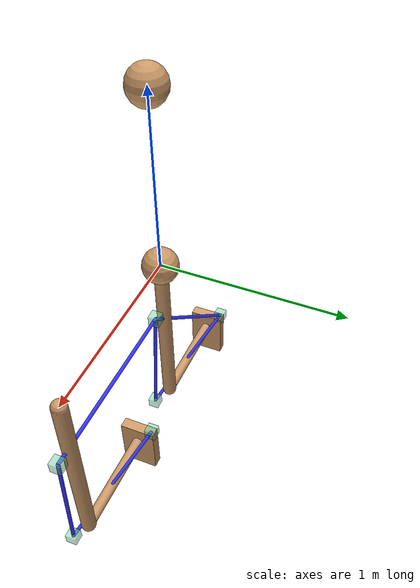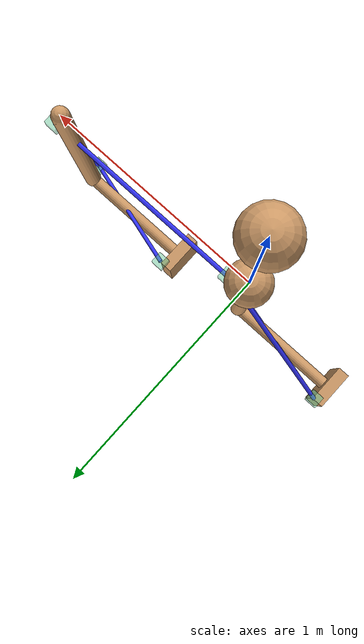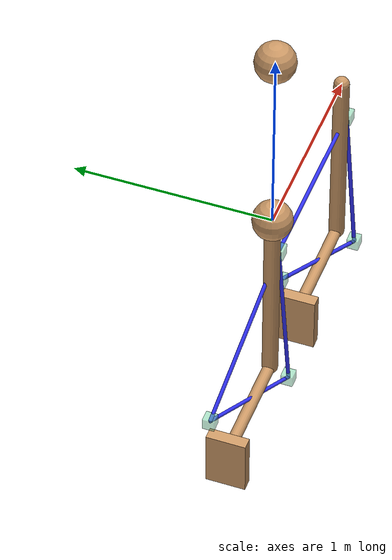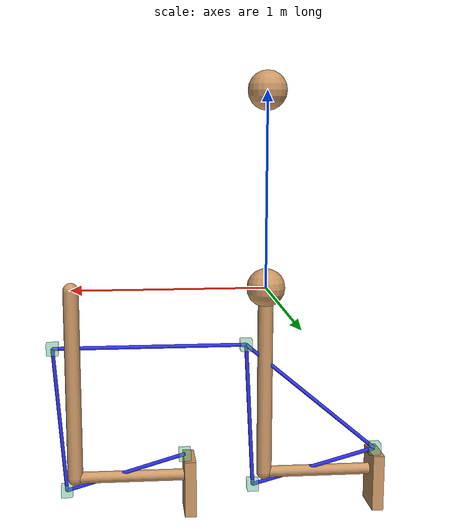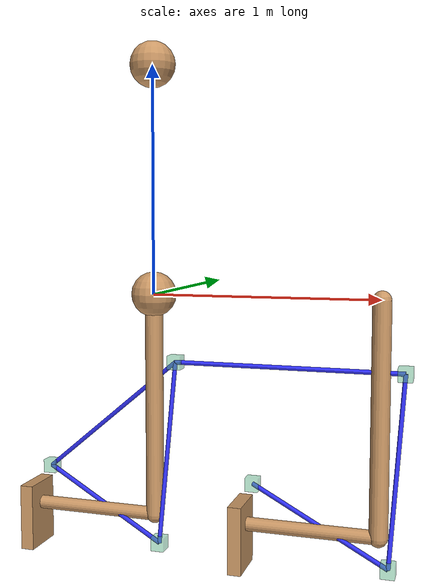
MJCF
<mujoco>
  <!-- this is an example of a "bad" model where the tendon spans multiple branches of the tree -->
  <option integrator="RK4">
    <flag contact="disable" gravity="disable" energy="enable"/>
  </option>

  <default>
    <geom rgba="0.8 0.6 .4 1"/>
    <site rgba="0.4 0.8 .6 .5"/>
  </default>

  <worldbody>
    <body name="distractor1">
      <freejoint/>
      <geom size=".1"/>
      <site name="a"/>
    </body>

    <body>
      <site name="0" type="box" size=".03 .03 .03" pos=".1 0 -.3"/>
      <joint type="hinge" axis="0 -1 0"/>
      <geom type="capsule" size=".04" fromto="0 0 0 0 0 -1"/>
      <site name="1" type="box" size=".03 .03 .03" pos=".05 -.08 -1.1"/>
      <body pos="0 0 -1">
        <joint axis="0 -1 0" damping="0" stiffness="20" springref="90"/>
        <geom type="capsule" size=".03" fromto="0 0 0 -.6 0 0"/>
        <body pos="-.6 0 0">
          <joint type="ball" stiffness="20" armature=".6"/>
          <site name="2" type="box" size=".03 .03 .03" pos=".03 .1 .15"/>
          <geom type="box" size=".03 .1 .15" pos="0 0 -.05"/>
        </body>
      </body>
    </body>

    <body name="distractor2" pos="0 0 1">
      <freejoint/>
      <geom size=".1"/>
      <site name="b"/>
    </body>

    <body pos="1 0 0">
      <site name="3" type="box" size=".03 .03 .03" pos=".1 0 -.3"/>
      <joint type="hinge" axis="0 -1 0"/>
      <geom type="capsule" size=".04" fromto="0 0 0 0 0 -1"/>
      <site name="4" type="box" size=".03 .03 .03" pos=".05 -.08 -1.1"/>
      <body pos="0 0 -1">
        <joint axis="0 -1 0" damping="0" stiffness="20" springref="90"/>
        <geom type="capsule" size=".03" fromto="0 0 0 -.6 0 0"/>
        <body pos="-.6 0 0">
          <joint type="ball" stiffness="20" armature=".2"/>
          <site name="5" type="box" size=".03 .03 .03" pos=".03 .1 .15"/>
          <geom type="box" size=".03 .1 .15" pos="0 0 -.05"/>
        </body>
      </body>
    </body>
  </worldbody>

  <tendon>
    <spatial armature="4">
      <site site="b"/>
      <site site="a"/>
    </spatial>
    <spatial width=".01" rgba=".2 .2 1 1" armature="10" stiffness="10">
      <site site="2"/>
      <site site="1"/>
      <site site="0"/>
      <site site="3"/>
      <site site="4"/>
      <site site="5"/>
    </spatial>
    <spatial width=".01" rgba=".2 .2 1 1" armature="10" stiffness="10">
      <site site="0"/>
      <site site="2"/>
      <site site="1"/>
    </spatial>
  </tendon>
</mujoco>
